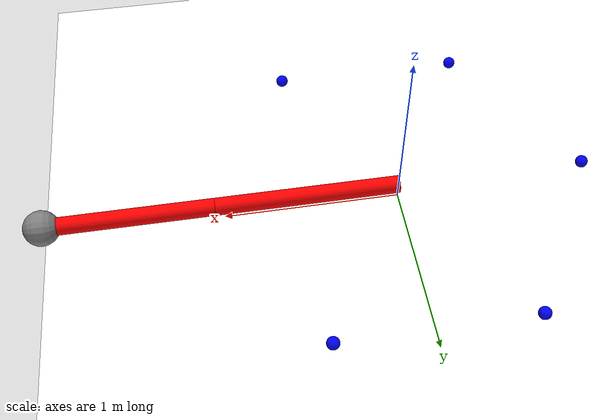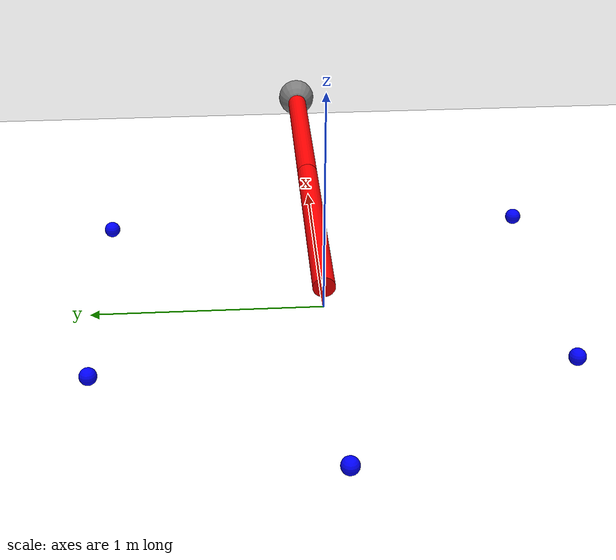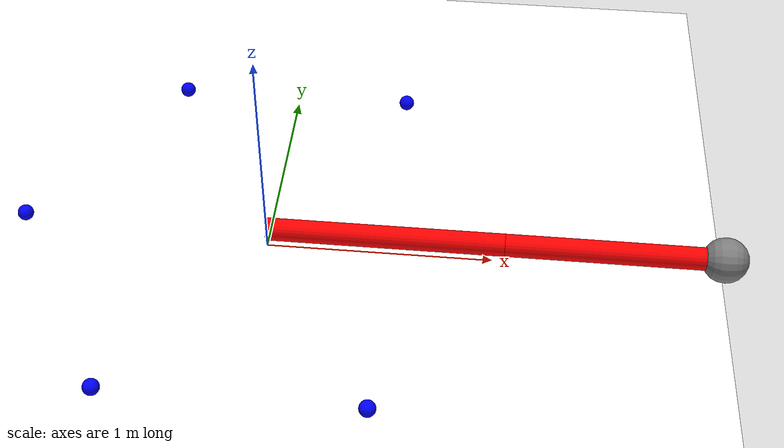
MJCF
<mujoco>
	<asset>
		<material name="red"   rgba="1 0 0 1"/>
		<material name="green" rgba="0 1 0 1"/>
		<material name="blue"  rgba="0 0 1 1"/>
		<material name="white" rgba="1 1 1 1"/>
		<material name="gray"  rgba=".5 .5 .5 1"/>
	</asset>

    <option collision="predefined"/>

    <worldbody>
        <light diffuse=".5 .5 .5" pos="0 0 10" dir="0 0 -1"/>
        <geom type="plane" size="2 2 0.1" rgba="1 1 1 1"/>

        <body name="link 0" pos="0.525 0 0.1" euler="0 90 0">
            <joint name="joint 0" type="hinge" axis="-1 0 0" pos="0 0 -0.525"/>
            <geom name="geom link 0" type="cylinder" size="0.05 0.525" material="red"/>
            <body name="link 1" pos="0 0 1.0" euler="0 0 0">
                <joint name="joint 1" type="hinge" axis="-1 0 0" pos="0 0 -0.475"/>
                <geom name="geom link 1" type="cylinder" size="0.05 0.475" material="red"/>
                <site name="tip" size="0.1" pos="0 0 0.475"/>
            </body>
        </body>

        <body name="link 0 shade" pos="0.525 0 0.1" euler="0 90 0">
            <joint name="joint 0 shade" type="hinge" axis="-1 0 0" pos="0 0 -0.525"/>
            <geom name="geom link 0 shade" type="cylinder" size="0.05 0.525" material="green"/>
            <body name="link 1 shade" pos="0 0 1.0" euler="0 0 0">
                <joint name="joint 1 shade" type="hinge" axis="-1 0 0" pos="0 0 -0.475"/>
                <geom name="geom link 1 shade" type="cylinder" size="0.05 0.475" material="green"/>
            </body>
        </body>

        <body name="obstacle 0">
            <geom name="geom obstacle 0" type="sphere" size="0.035" pos="1.09 0.0 0.1" material="blue"/>
        </body>
        <body name="obstacle 1">
            <geom name="geom obstacle 1" type="sphere" size="0.035" pos="0.5450000000000002 0.9439676901250381 0.1" material="blue"/>
        </body>
        <body name="obstacle 2">
            <geom name="geom obstacle 2" type="sphere" size="0.035" pos="-0.5449999999999998 0.9439676901250382 0.1" material="blue"/>
        </body>
        <body name="obstacle 3">
            <geom name="geom obstacle 3" type="sphere" size="0.035" pos="-1.09 1.334865011070615e-16 0.1" material="blue"/>
        </body>
        <body name="obstacle 4">
            <geom name="geom obstacle 4" type="sphere" size="0.035" pos="-0.5450000000000005 -0.9439676901250379 0.1" material="blue"/>
        </body>
        <body name="obstacle 5">
            <geom name="geom obstacle 5" type="sphere" size="0.035" pos="0.5450000000000002 -0.9439676901250381 0.1" material="blue"/>
        </body>

    </worldbody>

    <contact>
        <pair geom1="geom link 0" geom2="geom obstacle 0"/>
        <pair geom1="geom link 0" geom2="geom obstacle 1"/>
        <pair geom1="geom link 0" geom2="geom obstacle 2"/>
        <pair geom1="geom link 0" geom2="geom obstacle 3"/>
        <pair geom1="geom link 0" geom2="geom obstacle 4"/>
        <pair geom1="geom link 0" geom2="geom obstacle 5"/>
        <pair geom1="geom link 1" geom2="geom obstacle 0"/>
        <pair geom1="geom link 1" geom2="geom obstacle 1"/>
        <pair geom1="geom link 1" geom2="geom obstacle 2"/>
        <pair geom1="geom link 1" geom2="geom obstacle 3"/>
        <pair geom1="geom link 1" geom2="geom obstacle 4"/>
        <pair geom1="geom link 1" geom2="geom obstacle 5"/>
    </contact>

    <sensor>
      <framepos objtype="site" objname="tip"/>
    </sensor>
</mujoco>
